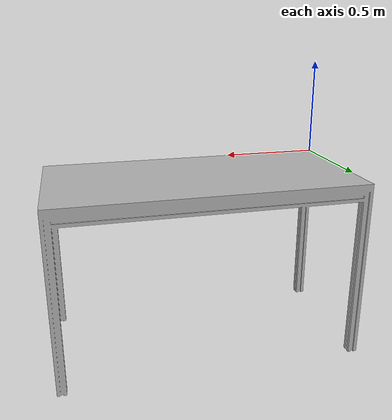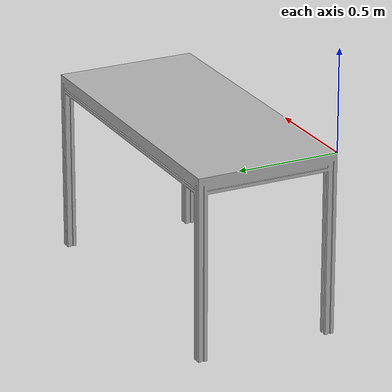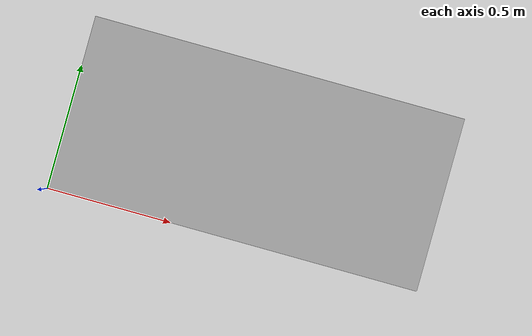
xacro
<?xml version="1.0"?>
<robot xmlns:xacro="http://www.ros.org/wiki/xacro" name="table">

  <link name="table_link">

    <visual>
      <geometry>
        <mesh filename="package://my_robot_description/meshes/WoodPlate_Bench_700x1500x900.stl"/>
      </geometry>

      <material name="gray">
        <color rgba="0.7 0.7 0.7 1.0"/>
      </material>
    </visual>

    <collision>
      <geometry>
        <box size="1.5 0.7 0.05"/>
      </geometry>
    </collision>

  </link>

</robot>
